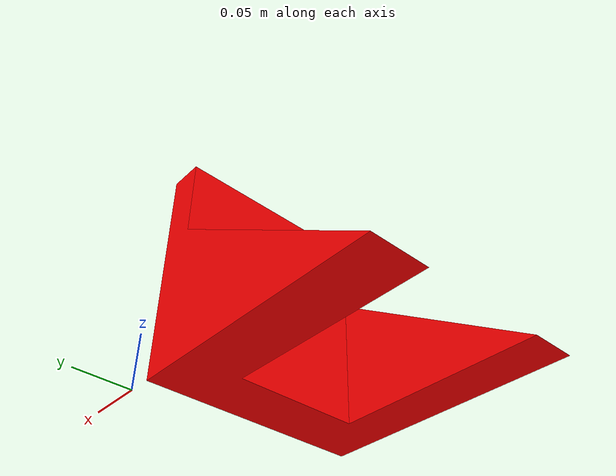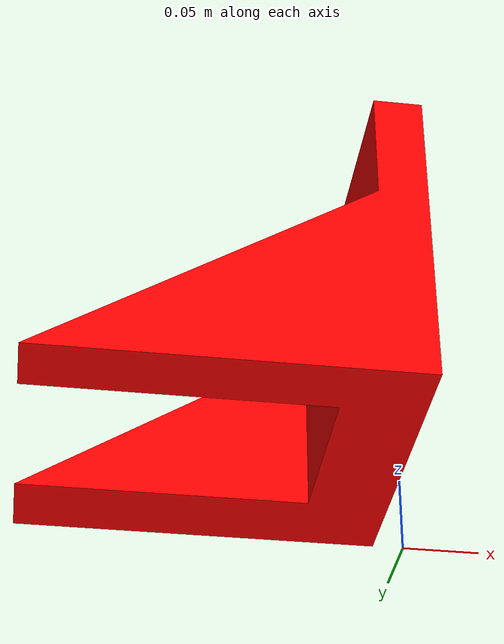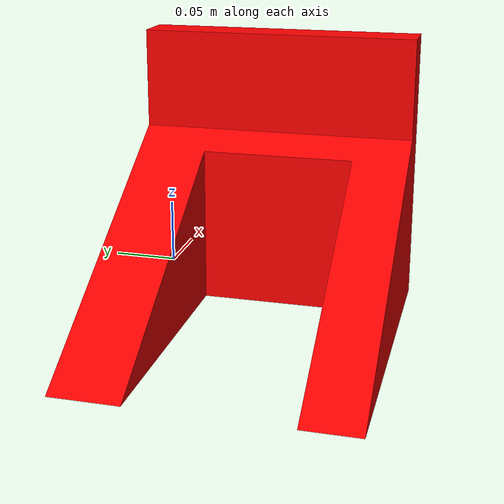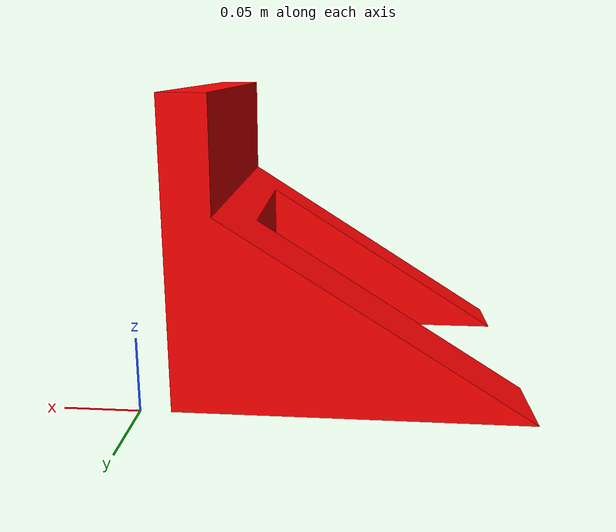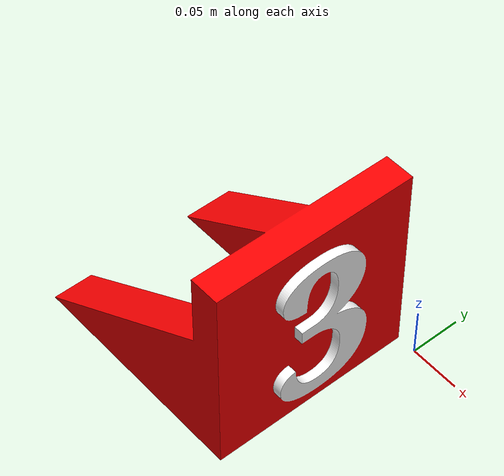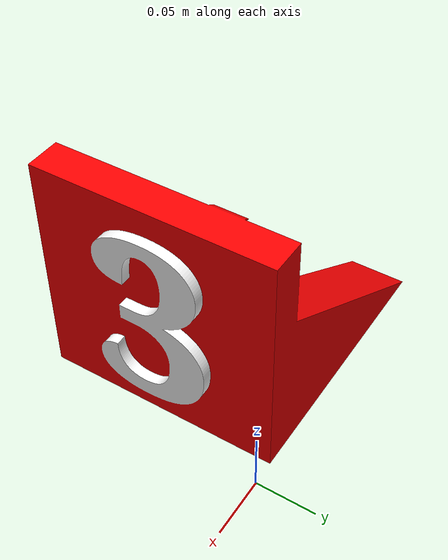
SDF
<?xml version="1.0"?>
<sdf version="1.5">
  <model name='building_curve'>
    <static>true</static>
    <link name="curve1">
      <visual name="visual">
            <geometry>
                <mesh>
                    <uri>model://table_number_three/three/three.dae</uri>
                </mesh>
            </geometry>
        </visual>
        <collision name="collision">
            <geometry>
                <mesh>
                    <uri>model://table_number_three/three/three.dae</uri>
                </mesh>
            </geometry>
        </collision>
    </link>
  </model>
</sdf>
